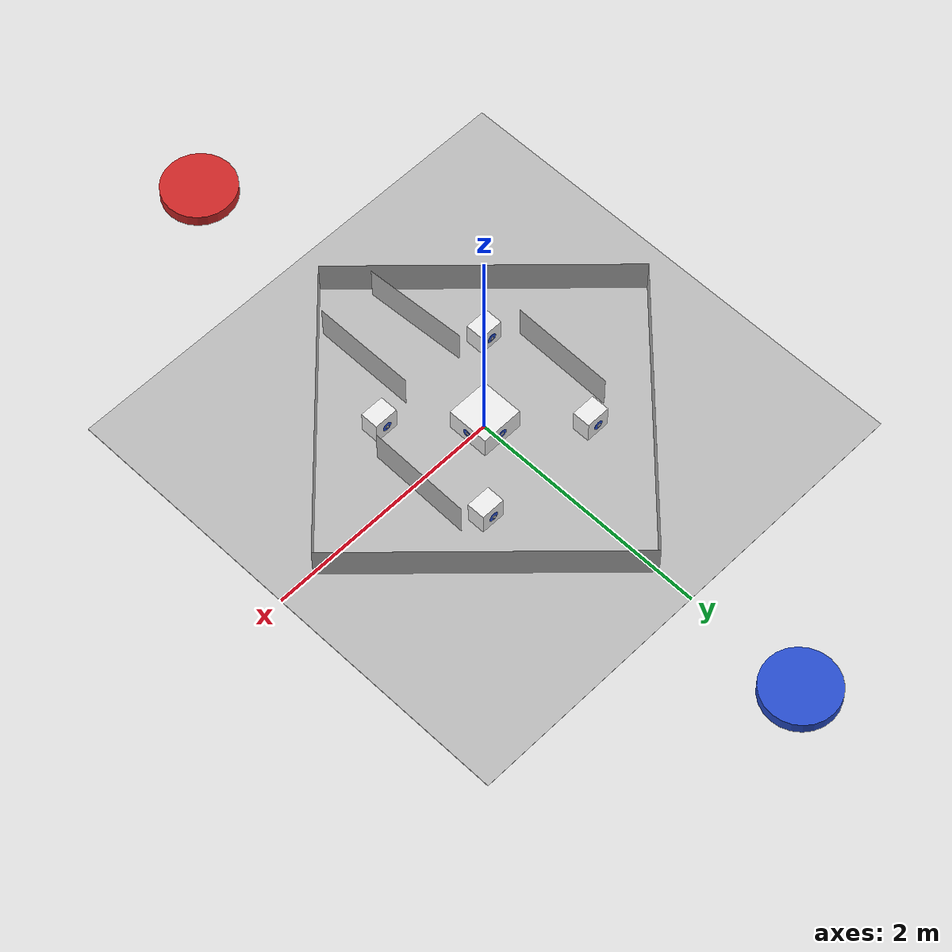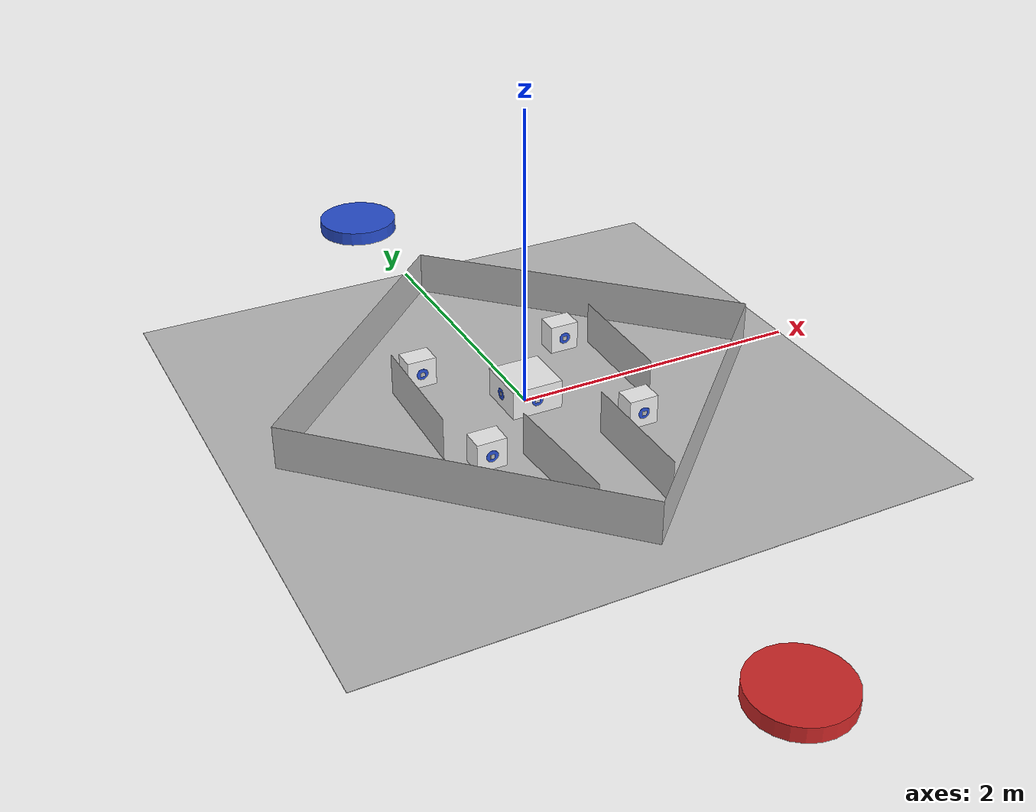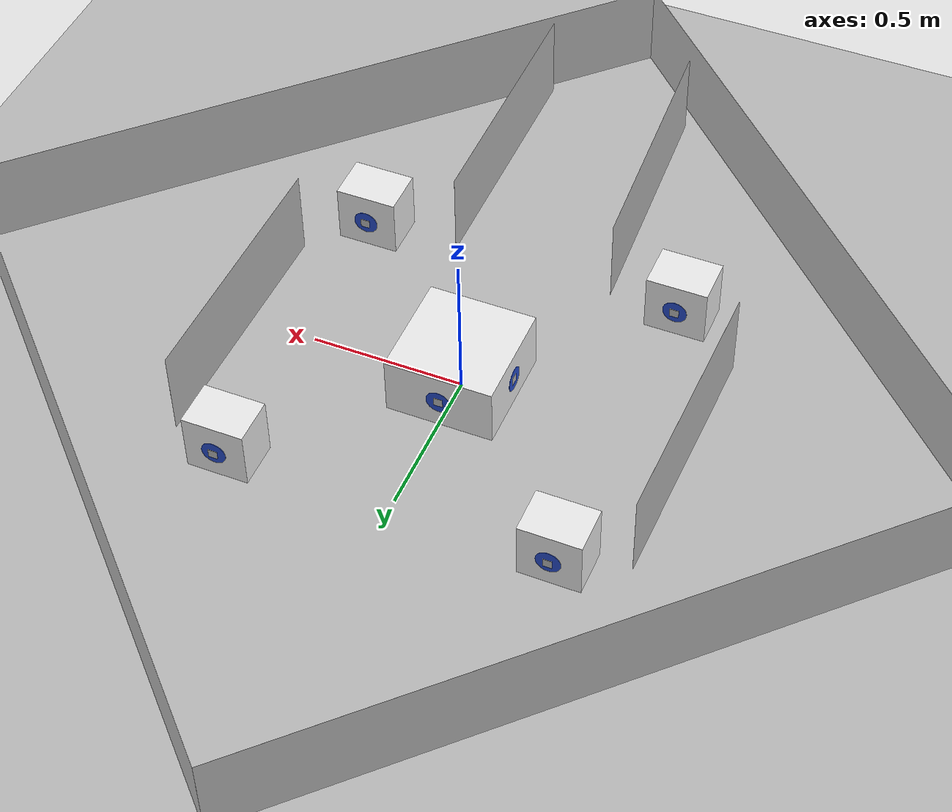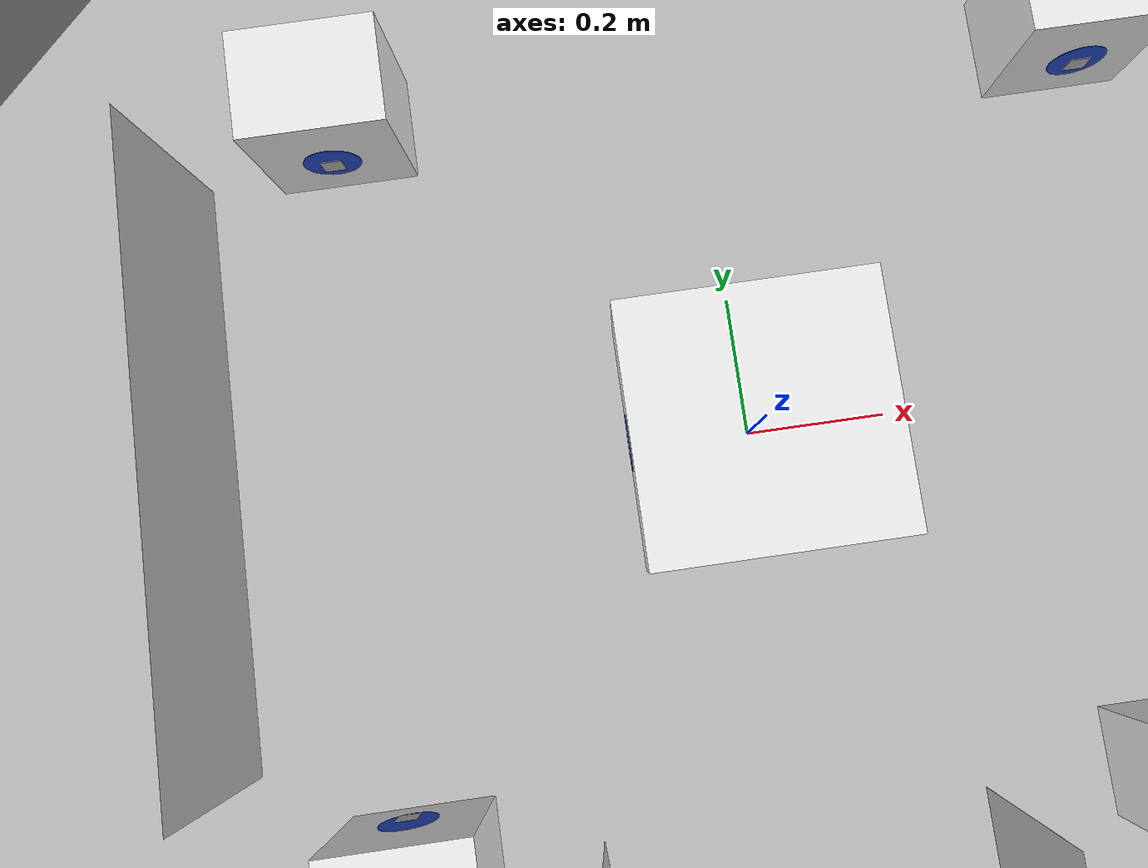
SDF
<sdf version="1.6">
 <world name="onigiri_field">
  <scene><shadows>0</shadows><ambient>0.4 0.4 0.4 1</ambient><background>0.7 0.7 0.7 1</background></scene>
  <physics name="ode_100iters" default="0" type="ode">
   <real_time_update_rate>1000</real_time_update_rate>
   <max_step_size>0.001</max_step_size>
   <real_time_factor>1</real_time_factor>
  </physics>
  <light name="sun" type="directional">
   <pose>0 0 10 0 -0 0</pose>
   <diffuse>0.8 0.8 0.8 1</diffuse>
   <specular>0.1 0.1 0.1 1</specular>
   <attenuation>
    <range>1000</range>
    <constant>0.9</constant>
    <linear>0.01</linear>
    <quadratic>0.001</quadratic>
   </attenuation>
   <direction>-0.5 0.5 -1</direction>
  </light>
  <model name="my_ground_plane">
   <static>1</static>
   <link name="link">
    <collision name="collision">
     <geometry><plane><normal>0 0 1</normal><size>4 4</size></plane></geometry>
     <surface><friction><ode><mu>100</mu><mu2>50</mu2></ode></friction></surface>
    </collision>
    <visual name="visual">
     <cast_shadows>0</cast_shadows>
     <geometry><plane><normal>0 0 1</normal><size>4 4</size></plane></geometry>
     <material>
      <script><uri>model://my_ground_plane/my_ground_plane.material</uri><name>MyGroundPlane/Image</name></script>
     </material>
    </visual>
   </link>
  </model>
  <model name="box_0">
   <static>1</static>
   <link name="link">
    <collision name="collision"><geometry><box><size>0.35 0.35 0.2</size></box></geometry></collision>
    <visual name="visual">
     <geometry><box><size>0.35 0.35 0.2</size></box></geometry>
     <material><script><name>Gazebo/White</name><uri>__default__</uri></script></material>
    </visual>
   </link>
   <pose>0 0 0.1 0 -0 0</pose>
  </model>
  <model name="plate_1">
   <static>1</static>
   <link name="link">
    <collision name="collision">
     <pose>0 0 0 1.571 -0 0</pose>
     <geometry><cylinder><radius>0.04</radius><length>0.001</length></cylinder></geometry>
    </collision>
    <visual name="visual">
     <pose>0 0 0 1.571 -0 0</pose>
     <geometry><cylinder><radius>0.04</radius><length>0.001</length></cylinder></geometry>
     <material><script><name>Gazebo/Blue</name><uri>__default__</uri></script></material>
    </visual>
   </link>
   <pose>0 0.1755 0.1 0 -0 0</pose>
  </model>
  <model name="box_0_tag_1">
   <static>1</static>
   <pose>0 0.176 0.1 0 -0 0</pose>
   <link name="link">
    <visual name="visual">
     <geometry><box><size>0.03 0.001 0.03</size></box></geometry>
     <material><script><uri>model://tags</uri><name>0001</name></script></material>
    </visual>
   </link>
  </model>
  <model name="plate_2">
   <static>1</static>
   <link name="link">
    <collision name="collision">
     <pose>0 0 0 1.571 -0 0</pose>
     <geometry><cylinder><radius>0.04</radius><length>0.001</length></cylinder></geometry>
    </collision>
    <visual name="visual">
     <pose>0 0 0 1.571 -0 0</pose>
     <geometry><cylinder><radius>0.04</radius><length>0.001</length></cylinder></geometry>
     <material><script><name>Gazebo/Blue</name><uri>__default__</uri></script></material>
    </visual>
   </link>
   <pose>0 -0.1755 0.1 0 -0 0</pose>
  </model>
  <model name="box_0_tag_2">
   <static>1</static>
   <pose>0 -0.176 0.1 0 -0 0</pose>
   <link name="link">
    <visual name="visual">
     <geometry><box><size>0.03 0.001 0.03</size></box></geometry>
     <material><script><uri>model://tags</uri><name>0002</name></script></material>
    </visual>
   </link>
  </model>
  <model name="plate_3">
   <static>1</static>
   <link name="link">
    <collision name="collision">
     <pose>0 0 0 1.571 -0 0</pose>
     <geometry><cylinder><radius>0.04</radius><length>0.001</length></cylinder></geometry>
    </collision>
    <visual name="visual">
     <pose>0 0 0 1.571 -0 0</pose>
     <geometry><cylinder><radius>0.04</radius><length>0.001</length></cylinder></geometry>
     <material><script><name>Gazebo/Blue</name><uri>__default__</uri></script></material>
    </visual>
   </link>
   <pose>0.1755 0 0.1 0 -0 1.571</pose>
  </model>
  <model name="box_0_tag_3">
   <static>1</static>
   <pose>0.176 0 0.1 0 -0 1.571</pose>
   <link name="link">
    <visual name="visual">
     <geometry><box><size>0.03 0.001 0.03</size></box></geometry>
     <material><script><uri>model://tags</uri><name>0003</name></script></material>
    </visual>
   </link>
  </model>
  <model name="plate_4">
   <static>1</static>
   <link name="link">
    <collision name="collision">
     <pose>0 0 0 1.571 -0 0</pose>
     <geometry><cylinder><radius>0.04</radius><length>0.001</length></cylinder></geometry>
    </collision>
    <visual name="visual">
     <pose>0 0 0 1.571 -0 0</pose>
     <geometry><cylinder><radius>0.04</radius><length>0.001</length></cylinder></geometry>
     <material><script><name>Gazebo/Blue</name><uri>__default__</uri></script></material>
    </visual>
   </link>
   <pose>-0.1755 0 0.1 0 -0 1.571</pose>
  </model>
  <model name="box_0_tag_4">
   <static>1</static>
   <pose>-0.176 0 0.1 0 -0 1.571</pose>
   <link name="link">
    <visual name="visual">
     <geometry><box><size>0.03 0.001 0.03</size></box></geometry>
     <material><script><uri>model://tags</uri><name>0004</name></script></material>
    </visual>
   </link>
  </model>
  <model name="box_1">
   <static>1</static>
   <link name="link">
    <collision name="collision"><geometry><box><size>0.2 0.15 0.2</size></box></geometry></collision>
    <visual name="visual">
     <geometry><box><size>0.2 0.15 0.2</size></box></geometry>
     <material><script><name>Gazebo/White</name><uri>__default__</uri></script></material>
    </visual>
   </link>
   <pose>0.53 0.53 0.1 0 -0 0</pose>
  </model>
  <model name="plate_5">
   <static>1</static>
   <link name="link">
    <collision name="collision">
     <pose>0 0 0 1.571 -0 0</pose>
     <geometry><cylinder><radius>0.04</radius><length>0.001</length></cylinder></geometry>
    </collision>
    <visual name="visual">
     <pose>0 0 0 1.571 -0 0</pose>
     <geometry><cylinder><radius>0.04</radius><length>0.001</length></cylinder></geometry>
     <material><script><name>Gazebo/Blue</name><uri>__default__</uri></script></material>
    </visual>
   </link>
   <pose>0.53 0.61 0.1 0 -0 0</pose>
  </model>
  <model name="box_1_tag_5">
   <static>1</static>
   <pose>0.53 0.615 0.1 0 -0 0</pose>
   <link name="link">
    <visual name="visual">
     <geometry><box><size>0.03 0.001 0.03</size></box></geometry>
     <material><script><uri>model://tags</uri><name>0005</name></script></material>
    </visual>
   </link>
  </model>
  <model name="plate_6">
   <static>1</static>
   <link name="link">
    <collision name="collision">
     <pose>0 0 0 1.571 -0 0</pose>
     <geometry><cylinder><radius>0.04</radius><length>0.001</length></cylinder></geometry>
    </collision>
    <visual name="visual">
     <pose>0 0 0 1.571 -0 0</pose>
     <geometry><cylinder><radius>0.04</radius><length>0.001</length></cylinder></geometry>
     <material><script><name>Gazebo/Blue</name><uri>__default__</uri></script></material>
    </visual>
   </link>
   <pose>0.53 0.45 0.1 0 -0 0</pose>
  </model>
  <model name="box_1_tag_6">
   <static>1</static>
   <pose>0.53 0.445 0.1 0 -0 0</pose>
   <link name="link">
    <visual name="visual">
     <geometry><box><size>0.03 0.001 0.03</size></box></geometry>
     <material><script><uri>model://tags</uri><name>0006</name></script></material>
    </visual>
   </link>
  </model>
  <model name="box_2">
   <static>1</static>
   <link name="link">
    <collision name="collision"><geometry><box><size>0.2 0.15 0.2</size></box></geometry></collision>
    <visual name="visual">
     <geometry><box><size>0.2 0.15 0.2</size></box></geometry>
     <material><script><name>Gazebo/White</name><uri>__default__</uri></script></material>
    </visual>
   </link>
   <pose>0.53 -0.53 0.1 0 -0 0</pose>
  </model>
  <model name="plate_7">
   <static>1</static>
   <link name="link">
    <collision name="collision">
     <pose>0 0 0 1.571 -0 0</pose>
     <geometry><cylinder><radius>0.04</radius><length>0.001</length></cylinder></geometry>
    </collision>
    <visual name="visual">
     <pose>0 0 0 1.571 -0 0</pose>
     <geometry><cylinder><radius>0.04</radius><length>0.001</length></cylinder></geometry>
     <material><script><name>Gazebo/Blue</name><uri>__default__</uri></script></material>
    </visual>
   </link>
   <pose>0.53 -0.45 0.1 0 -0 0</pose>
  </model>
  <model name="box_2_tag_7">
   <static>1</static>
   <pose>0.53 -0.445 0.1 0 -0 0</pose>
   <link name="link">
    <visual name="visual">
     <geometry><box><size>0.03 0.001 0.03</size></box></geometry>
     <material><script><uri>model://tags</uri><name>0007</name></script></material>
    </visual>
   </link>
  </model>
  <model name="plate_8">
   <static>1</static>
   <link name="link">
    <collision name="collision">
     <pose>0 0 0 1.571 -0 0</pose>
     <geometry><cylinder><radius>0.04</radius><length>0.001</length></cylinder></geometry>
    </collision>
    <visual name="visual">
     <pose>0 0 0 1.571 -0 0</pose>
     <geometry><cylinder><radius>0.04</radius><length>0.001</length></cylinder></geometry>
     <material><script><name>Gazebo/Blue</name><uri>__default__</uri></script></material>
    </visual>
   </link>
   <pose>0.53 -0.61 0.1 0 -0 0</pose>
  </model>
  <model name="box_2_tag_8">
   <static>1</static>
   <pose>0.53 -0.615 0.1 0 -0 0</pose>
   <link name="link">
    <visual name="visual">
     <geometry><box><size>0.03 0.001 0.03</size></box></geometry>
     <material><script><uri>model://tags</uri><name>0008</name></script></material>
    </visual>
   </link>
  </model>
  <model name="box_3">
   <static>1</static>
   <link name="link">
    <collision name="collision"><geometry><box><size>0.2 0.15 0.2</size></box></geometry></collision>
    <visual name="visual">
     <geometry><box><size>0.2 0.15 0.2</size></box></geometry>
     <material><script><name>Gazebo/White</name><uri>__default__</uri></script></material>
    </visual>
   </link>
   <pose>-0.53 0.53 0.1 0 -0 0</pose>
  </model>
  <model name="plate_9">
   <static>1</static>
   <link name="link">
    <collision name="collision">
     <pose>0 0 0 1.571 -0 0</pose>
     <geometry><cylinder><radius>0.04</radius><length>0.001</length></cylinder></geometry>
    </collision>
    <visual name="visual">
     <pose>0 0 0 1.571 -0 0</pose>
     <geometry><cylinder><radius>0.04</radius><length>0.001</length></cylinder></geometry>
     <material><script><name>Gazebo/Blue</name><uri>__default__</uri></script></material>
    </visual>
   </link>
   <pose>-0.53 0.61 0.1 0 -0 0</pose>
  </model>
  <model name="box_3_tag_9">
   <static>1</static>
   <pose>-0.53 0.615 0.1 0 -0 0</pose>
   <link name="link">
    <visual name="visual">
     <geometry><box><size>0.03 0.001 0.03</size></box></geometry>
     <material><script><uri>model://tags</uri><name>0009</name></script></material>
    </visual>
   </link>
  </model>
  <model name="plate_10">
   <static>1</static>
   <link name="link">
    <collision name="collision">
     <pose>0 0 0 1.571 -0 0</pose>
     <geometry><cylinder><radius>0.04</radius><length>0.001</length></cylinder></geometry>
    </collision>
    <visual name="visual">
     <pose>0 0 0 1.571 -0 0</pose>
     <geometry><cylinder><radius>0.04</radius><length>0.001</length></cylinder></geometry>
     <material><script><name>Gazebo/Blue</name><uri>__default__</uri></script></material>
    </visual>
   </link>
   <pose>-0.53 0.45 0.1 0 -0 0</pose>
  </model>
  <model name="box_3_tag_10">
   <static>1</static>
   <pose>-0.53 0.445 0.1 0 -0 0</pose>
   <link name="link">
    <visual name="visual">
     <geometry><box><size>0.03 0.001 0.03</size></box></geometry>
     <material><script><uri>model://tags</uri><name>0010</name></script></material>
    </visual>
   </link>
  </model>
  <model name="box_4">
   <static>1</static>
   <link name="link">
    <collision name="collision"><geometry><box><size>0.2 0.15 0.2</size></box></geometry></collision>
    <visual name="visual">
     <geometry><box><size>0.2 0.15 0.2</size></box></geometry>
     <material><script><name>Gazebo/White</name><uri>__default__</uri></script></material>
    </visual>
   </link>
   <pose>-0.53 -0.53 0.1 0 -0 0</pose>
  </model>
  <model name="plate_11">
   <static>1</static>
   <link name="link">
    <collision name="collision">
     <pose>0 0 0 1.571 -0 0</pose>
     <geometry><cylinder><radius>0.04</radius><length>0.001</length></cylinder></geometry>
    </collision>
    <visual name="visual">
     <pose>0 0 0 1.571 -0 0</pose>
     <geometry><cylinder><radius>0.04</radius><length>0.001</length></cylinder></geometry>
     <material><script><name>Gazebo/Blue</name><uri>__default__</uri></script></material>
    </visual>
   </link>
   <pose>-0.53 -0.45 0.1 0 -0 0</pose>
  </model>
  <model name="box_4_tag_11">
   <static>1</static>
   <pose>-0.53 -0.445 0.1 0 -0 0</pose>
   <link name="link">
    <visual name="visual">
     <geometry><box><size>0.03 0.001 0.03</size></box></geometry>
     <material><script><uri>model://tags</uri><name>0011</name></script></material>
    </visual>
   </link>
  </model>
  <model name="plate_12">
   <static>1</static>
   <link name="link">
    <collision name="collision">
     <pose>0 0 0 1.571 -0 0</pose>
     <geometry><cylinder><radius>0.04</radius><length>0.001</length></cylinder></geometry>
    </collision>
    <visual name="visual">
     <pose>0 0 0 1.571 -0 0</pose>
     <geometry><cylinder><radius>0.04</radius><length>0.001</length></cylinder></geometry>
     <material><script><name>Gazebo/Blue</name><uri>__default__</uri></script></material>
    </visual>
   </link>
   <pose>-0.53 -0.61 0.1 0 -0 0</pose>
  </model>
  <model name="box_4_tag_12">
   <static>1</static>
   <pose>-0.53 -0.615 0.1 0 -0 0</pose>
   <link name="link">
    <visual name="visual">
     <geometry><box><size>0.03 0.001 0.03</size></box></geometry>
     <material><script><uri>model://tags</uri><name>0012</name></script></material>
    </visual>
   </link>
  </model>
  <model name="wall_1">
   <static>1</static>
   <pose>0.8485 0.8485 0.15 0 0 -0.785398</pose>
   <link name="link">
    <collision name="visual"><geometry><box><size>2.39992 0.0001 0.3</size></box></geometry></collision>
    <visual name="visual">
     <geometry><box><size>2.39992 0.0001 0.3</size></box></geometry>
     <material><script><uri>model://wall</uri><name>wall_1</name></script></material>
    </visual>
   </link>
  </model>
  <model name="wall_2">
   <static>1</static>
   <pose>0.8485 -0.8485 0.15 0 0 -2.35619</pose>
   <link name="link">
    <collision name="visual"><geometry><box><size>2.39992 0.0001 0.3</size></box></geometry></collision>
    <visual name="visual">
     <geometry><box><size>2.39992 0.0001 0.3</size></box></geometry>
     <material><script><uri>model://wall</uri><name>wall_2</name></script></material>
    </visual>
   </link>
  </model>
  <model name="wall_3">
   <static>1</static>
   <pose>-0.8485 -0.8485 0.15 0 -0 2.35619</pose>
   <link name="link">
    <collision name="visual"><geometry><box><size>2.39992 0.0001 0.3</size></box></geometry></collision>
    <visual name="visual">
     <geometry><box><size>2.39992 0.0001 0.3</size></box></geometry>
     <material><script><uri>model://wall</uri><name>wall_3</name></script></material>
    </visual>
   </link>
  </model>
  <model name="wall_4">
   <static>1</static>
   <pose>-0.8485 0.8485 0.15 0 -0 0.785398</pose>
   <link name="link">
    <collision name="visual"><geometry><box><size>2.39992 0.0001 0.3</size></box></geometry></collision>
    <visual name="visual">
     <geometry><box><size>2.39992 0.0001 0.3</size></box></geometry>
     <material><script><uri>model://wall</uri><name>wall_4</name></script></material>
    </visual>
   </link>
  </model>
  <model name="blue_maker">
   <static>1</static>
   <link name="link">
    <visual name="visual">
     <pose>0 3 0 0 -0 0</pose>
     <geometry><cylinder><radius>0.3</radius><length>0.1</length></cylinder></geometry>
     <material><script><name>Gazebo/Blue</name><uri>__default__</uri></script></material>
    </visual>
   </link>
  </model>
  <model name="red_maker">
   <static>1</static>
   <link name="link">
    <visual name="visual">
     <pose>0 -3 0 0 -0 0</pose>
     <geometry><cylinder><radius>0.3</radius><length>0.1</length></cylinder></geometry>
     <material><script><name>Gazebo/Red</name><uri>__default__</uri></script></material>
    </visual>
   </link>
  </model>
  <gravity>0 0 -9.8</gravity>
  <magnetic_field>6e-06 2.3e-05 -4.2e-05</magnetic_field>
  <atmosphere type="adiabatic"/>
  <spherical_coordinates>
   <surface_model>EARTH_WGS84</surface_model>
   <latitude_deg>0</latitude_deg>
   <longitude_deg>0</longitude_deg>
   <elevation>0</elevation>
   <heading_deg>0</heading_deg>
  </spherical_coordinates>
  <model name="wall_4_clone_clone">
   <static>1</static>
   <pose>0.25403 -0.969532 0.15 0 -0 1.57082</pose>
   <link name="link">
    <collision name="visual"><geometry><box><size>0.857099 0.0001 0.3</size></box></geometry></collision>
    <visual name="visual">
     <geometry><box><size>0.857099 0.0001 0.3</size></box></geometry>
     <material><script><uri>model://wall</uri><name>wall_4</name></script></material>
    </visual>
   </link>
  </model>
  <model name="wall_4_clone_clone_clone">
   <static>1</static>
   <pose>-0.26197 -0.964095 0.15 0 -0 1.6278</pose>
   <link name="link">
    <collision name="visual"><geometry><box><size>0.857099 0.0001 0.3</size></box></geometry></collision>
    <visual name="visual">
     <geometry><box><size>0.857099 0.0001 0.3</size></box></geometry>
     <material><script><uri>model://wall</uri><name>wall_4</name></script></material>
    </visual>
   </link>
  </model>
  <model name="wall_4_clone_clone_clone_0">
   <static>1</static>
   <pose>-0.744018 0.044462 0.15 0 -0 1.55437</pose>
   <link name="link">
    <collision name="visual"><geometry><box><size>0.857099 0.0001 0.3</size></box></geometry></collision>
    <visual name="visual">
     <geometry><box><size>0.857099 0.0001 0.3</size></box></geometry>
     <material><script><uri>model://wall</uri><name>wall_4</name></script></material>
    </visual>
   </link>
  </model>
  <model name="wall_4_clone_clone_clone_1">
   <static>1</static>
   <pose>0.723392 0.06288 0.15 0 -0 1.55437</pose>
   <link name="link">
    <collision name="visual"><geometry><box><size>0.857099 0.0001 0.3</size></box></geometry></collision>
    <visual name="visual">
     <geometry><box><size>0.857099 0.0001 0.3</size></box></geometry>
     <material><script><uri>model://wall</uri><name>wall_4</name></script></material>
    </visual>
   </link>
  </model>
 </world>
</sdf>
